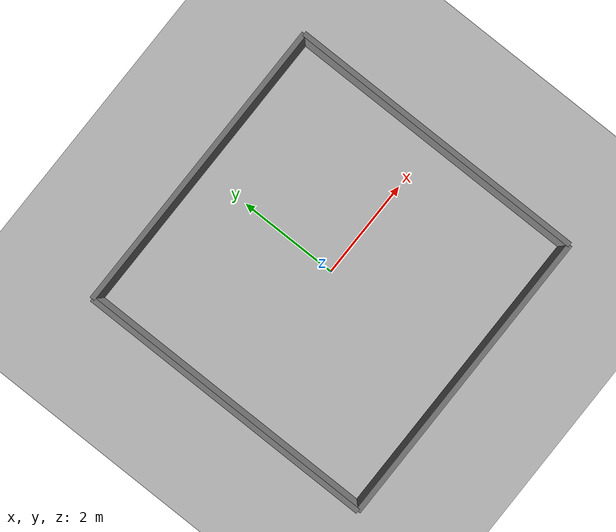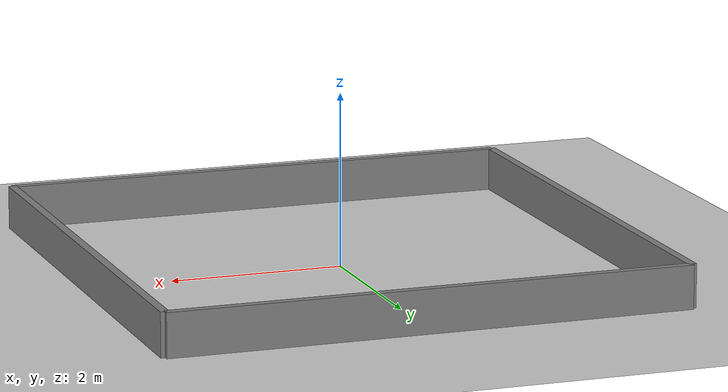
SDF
<?xml version="1.0" ?>
<sdf version="1.8">

  <world name="ignition_world">

    <physics name="1ms" type="ignored">
      <max_step_size>0.001</max_step_size>
      <real_time_factor>1.0</real_time_factor>
    </physics>

    <!-- Core simulation systems -->
    <plugin filename="libignition-gazebo-physics-system.so"
            name="ignition::gazebo::systems::Physics"/>
    <plugin filename="libignition-gazebo-user-commands-system.so"
            name="ignition::gazebo::systems::UserCommands"/>
    <plugin filename="libignition-gazebo-scene-broadcaster-system.so"
            name="ignition::gazebo::systems::SceneBroadcaster"/>

    <!--
      Sensors system plugin — MANDATORY for ANY sensor to publish data.
      render_engine ogre2 is required for gpu_lidar.
    -->
    <plugin filename="libignition-gazebo-sensors-system.so"
            name="ignition::gazebo::systems::Sensors">
      <render_engine>ogre2</render_engine>
    </plugin>

    <plugin filename="libignition-gazebo-imu-system.so"
            name="ignition::gazebo::systems::Imu"/>

    <plugin filename="libignition-gazebo-contact-system.so"
            name="ignition::gazebo::systems::Contact"/>

    <light type="directional" name="sun">
      <cast_shadows>true</cast_shadows>
      <pose>0 0 10 0 0 0</pose>
      <diffuse>0.8 0.8 0.8 1</diffuse>
      <specular>0.2 0.2 0.2 1</specular>
      <direction>-0.5 0.1 -0.9</direction>
    </light>

    <!-- Ground plane -->
    <model name="floor">
      <static>true</static>
      <link name="link">
        <collision name="surface">
          <geometry>
            <plane><normal>0 0 1</normal><size>100 100</size></plane>
          </geometry>
          <surface>
            <friction><ode><mu>1.0</mu><mu2>1.0</mu2></ode></friction>
          </surface>
        </collision>
        <visual name="surface">
          <geometry>
            <plane><normal>0 0 1</normal><size>100 100</size></plane>
          </geometry>
          <material>
            <ambient>0.8 0.8 0.8 1</ambient>
            <diffuse>0.8 0.8 0.8 1</diffuse>
          </material>
        </visual>
      </link>
    </model>

    <!-- North wall -->
    <model name="wall_north">
      <static>true</static>
      <pose>0 3 0.25 0 0 0</pose>
      <link name="link">
        <collision name="col"><geometry><box><size>6 0.1 0.5</size></box></geometry></collision>
        <visual name="vis">
          <geometry><box><size>6 0.1 0.5</size></box></geometry>
          <material><ambient>0.5 0.5 0.5 1</ambient><diffuse>0.5 0.5 0.5 1</diffuse></material>
        </visual>
      </link>
    </model>

    <!-- South wall -->
    <model name="wall_south">
      <static>true</static>
      <pose>0 -3 0.25 0 0 0</pose>
      <link name="link">
        <collision name="col"><geometry><box><size>6 0.1 0.5</size></box></geometry></collision>
        <visual name="vis">
          <geometry><box><size>6 0.1 0.5</size></box></geometry>
          <material><ambient>0.5 0.5 0.5 1</ambient><diffuse>0.5 0.5 0.5 1</diffuse></material>
        </visual>
      </link>
    </model>

    <!-- East wall -->
    <model name="wall_east">
      <static>true</static>
      <pose>3 0 0.25 0 0 0</pose>
      <link name="link">
        <collision name="col"><geometry><box><size>0.1 6 0.5</size></box></geometry></collision>
        <visual name="vis">
          <geometry><box><size>0.1 6 0.5</size></box></geometry>
          <material><ambient>0.5 0.5 0.5 1</ambient><diffuse>0.5 0.5 0.5 1</diffuse></material>
        </visual>
      </link>
    </model>

    <!-- West wall -->
    <model name="wall_west">
      <static>true</static>
      <pose>-3 0 0.25 0 0 0</pose>
      <link name="link">
        <collision name="col"><geometry><box><size>0.1 6 0.5</size></box></geometry></collision>
        <visual name="vis">
          <geometry><box><size>0.1 6 0.5</size></box></geometry>
          <material><ambient>0.5 0.5 0.5 1</ambient><diffuse>0.5 0.5 0.5 1</diffuse></material>
        </visual>
      </link>
    </model>

  </world>
</sdf>
